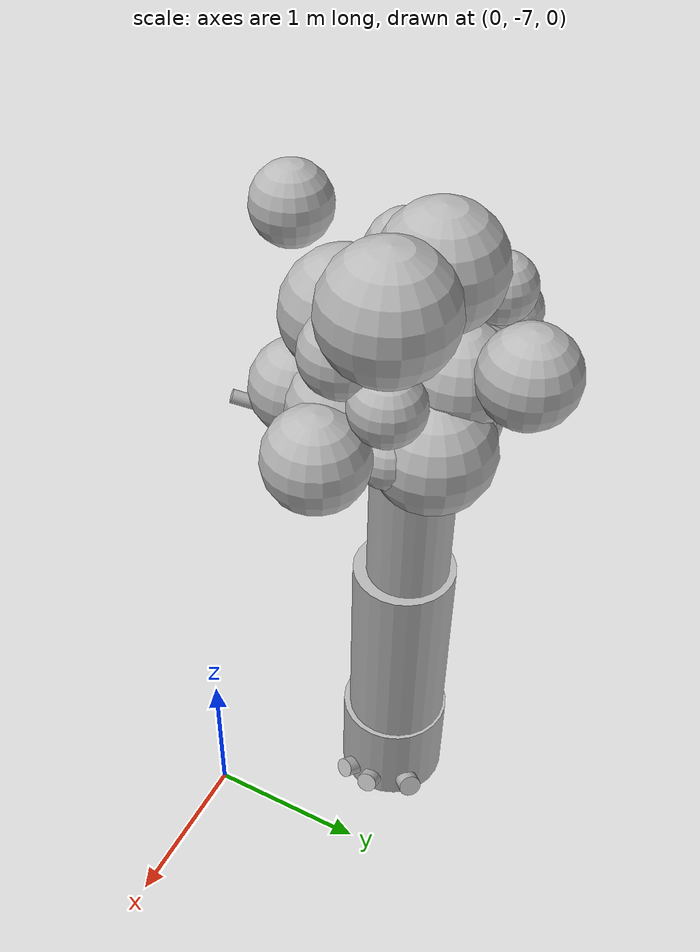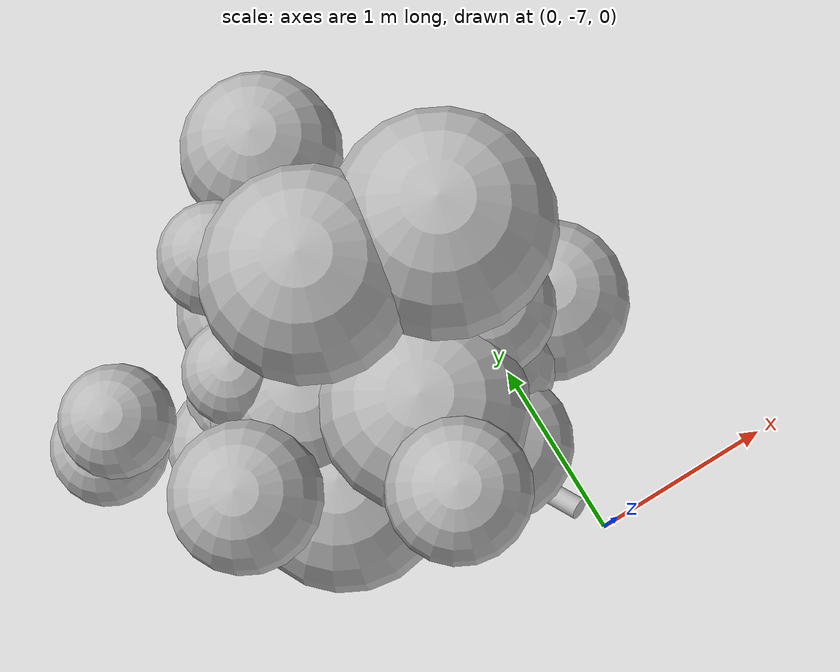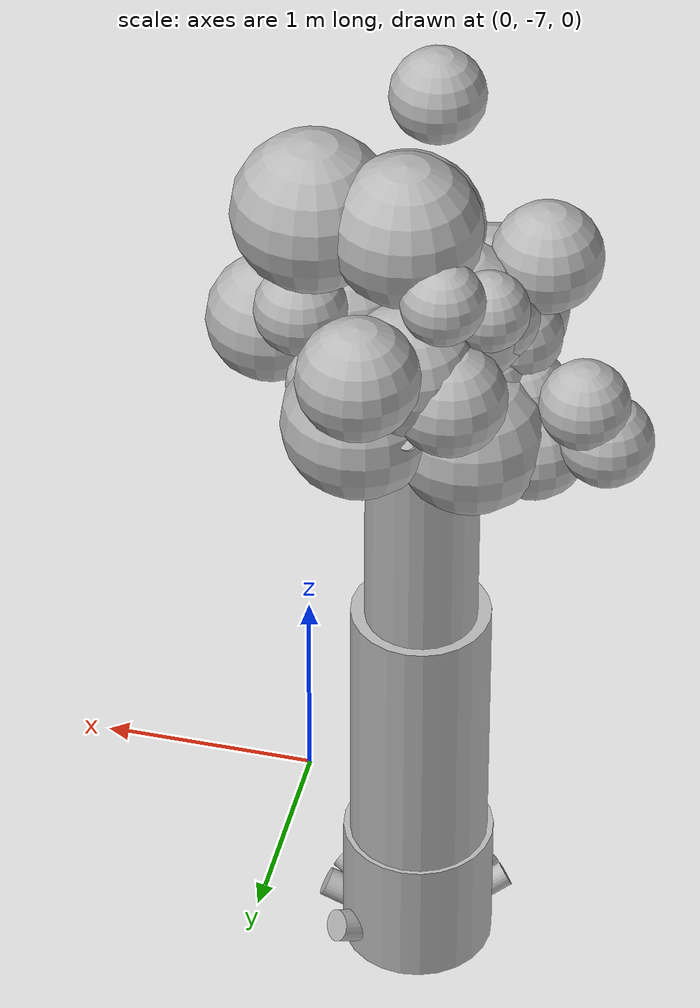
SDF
<sdf version="1.6">
 <world name="default">
  <model name="tree_12">
   <static>true</static>
   <pose>-0.7490 -6.0660 0 0 0 0</pose>
   <link name="trunk">
    <pose>0 0 1.5000 0 0 0</pose>
    <collision name="trunk_c">
     <geometry><cylinder><radius>0.3500</radius><length>3.0000</length></cylinder></geometry>
    </collision>
   </link>
   <link name="trunk_v0">
    <pose>-0.0004 0.0017 0.3100 0 0 0</pose>
    <visual name="trunk_v0_v">
     <geometry><cylinder><radius>0.3448</radius><length>0.6448</length></cylinder></geometry>
     <material>
      <script>
       <uri>model://bushfire/materials/scripts</uri>
       <uri>model://bushfire/materials/textures</uri>
       <name>Bushfire/CharBark</name>
      </script>
     </material>
    </visual>
   </link>
   <link name="trunk_v1">
    <pose>-0.0031 0.0120 1.2700 0 0 0</pose>
    <visual name="trunk_v1_v">
     <geometry><cylinder><radius>0.3150</radius><length>1.3520</length></cylinder></geometry>
     <material>
      <script>
       <uri>model://bushfire/materials/scripts</uri>
       <uri>model://bushfire/materials/textures</uri>
       <name>Bushfire/BarkSmooth</name>
      </script>
     </material>
    </visual>
   </link>
   <link name="trunk_v2">
    <pose>-0.0077 0.0302 2.4600 0 0 0</pose>
    <visual name="trunk_v2_v">
     <geometry><cylinder><radius>0.2520</radius><length>1.1232</length></cylinder></geometry>
     <material>
      <script>
       <uri>model://bushfire/materials/scripts</uri>
       <uri>model://bushfire/materials/textures</uri>
       <name>Bushfire/BarkSmooth</name>
      </script>
     </material>
    </visual>
   </link>
   <link name="root0">
    <pose>0.1748 0.1644 0.09 0 1.150 0.755</pose>
    <visual name="root0_v">
     <geometry><cylinder><radius>0.0740</radius><length>0.4200</length></cylinder></geometry>
     <material>
      <script>
       <uri>model://bushfire/materials/scripts</uri>
       <uri>model://bushfire/materials/textures</uri>
       <name>Bushfire/CharBark</name>
      </script>
     </material>
    </visual>
   </link>
   <link name="root1">
    <pose>-0.1397 -0.1952 0.09 0 1.150 4.091</pose>
    <visual name="root1_v">
     <geometry><cylinder><radius>0.0757</radius><length>0.4200</length></cylinder></geometry>
     <material>
      <script>
       <uri>model://bushfire/materials/scripts</uri>
       <uri>model://bushfire/materials/textures</uri>
       <name>Bushfire/CharBark</name>
      </script>
     </material>
    </visual>
   </link>
   <link name="root2">
    <pose>0.2203 -0.0951 0.09 0 1.150 5.876</pose>
    <visual name="root2_v">
     <geometry><cylinder><radius>0.0646</radius><length>0.4200</length></cylinder></geometry>
     <material>
      <script>
       <uri>model://bushfire/materials/scripts</uri>
       <uri>model://bushfire/materials/textures</uri>
       <name>Bushfire/CharBark</name>
      </script>
     </material>
    </visual>
   </link>
   <link name="root3">
    <pose>0.2398 0.0107 0.09 0 1.150 0.044</pose>
    <visual name="root3_v">
     <geometry><cylinder><radius>0.0673</radius><length>0.4200</length></cylinder></geometry>
     <material>
      <script>
       <uri>model://bushfire/materials/scripts</uri>
       <uri>model://bushfire/materials/textures</uri>
       <name>Bushfire/CharBark</name>
      </script>
     </material>
    </visual>
   </link>
   <link name="root4">
    <pose>-0.2041 -0.1262 0.09 0 1.150 3.696</pose>
    <visual name="root4_v">
     <geometry><cylinder><radius>0.0587</radius><length>0.4200</length></cylinder></geometry>
     <material>
      <script>
       <uri>model://bushfire/materials/scripts</uri>
       <uri>model://bushfire/materials/textures</uri>
       <name>Bushfire/CharBark</name>
      </script>
     </material>
    </visual>
   </link>
   <link name="branch0">
    <pose>0.2636 -0.0064 3.0713 0 0.8558 -0.0242</pose>
    <visual name="branch0_v">
     <geometry><cylinder><radius>0.0337</radius><length>0.6985</length></cylinder></geometry>
     <material>
      <script>
       <uri>model://bushfire/materials/scripts</uri>
       <uri>model://bushfire/materials/textures</uri>
       <name>Bushfire/BarkSmooth</name>
      </script>
     </material>
    </visual>
   </link>
   <link name="branch1">
    <pose>-0.0123 0.2164 3.0348 0 0.7707 1.6277</pose>
    <visual name="branch1_v">
     <geometry><cylinder><radius>0.0425</radius><length>0.6221</length></cylinder></geometry>
     <material>
      <script>
       <uri>model://bushfire/materials/scripts</uri>
       <uri>model://bushfire/materials/textures</uri>
       <name>Bushfire/BarkSmooth</name>
      </script>
     </material>
    </visual>
   </link>
   <link name="branch2">
    <pose>-0.2556 0.0350 2.8483 0 0.9260 3.0056</pose>
    <visual name="branch2_v">
     <geometry><cylinder><radius>0.0481</radius><length>0.6455</length></cylinder></geometry>
     <material>
      <script>
       <uri>model://bushfire/materials/scripts</uri>
       <uri>model://bushfire/materials/textures</uri>
       <name>Bushfire/BarkSmooth</name>
      </script>
     </material>
    </visual>
   </link>
   <link name="branch3">
    <pose>-0.1807 -0.1343 2.9584 0 0.9261 3.7809</pose>
    <visual name="branch3_v">
     <geometry><cylinder><radius>0.0417</radius><length>0.5634</length></cylinder></geometry>
     <material>
      <script>
       <uri>model://bushfire/materials/scripts</uri>
       <uri>model://bushfire/materials/textures</uri>
       <name>Bushfire/BarkSmooth</name>
      </script>
     </material>
    </visual>
   </link>
   <link name="branch4">
    <pose>0.1922 -0.1651 3.0190 0 0.6403 5.5736</pose>
    <visual name="branch4_v">
     <geometry><cylinder><radius>0.0481</radius><length>0.8483</length></cylinder></geometry>
     <material>
      <script>
       <uri>model://bushfire/materials/scripts</uri>
       <uri>model://bushfire/materials/textures</uri>
       <name>Bushfire/BarkSmooth</name>
      </script>
     </material>
    </visual>
   </link>
   <link name="spar">
    <pose>0.1913 -0.3739 3.0500 0 1.2208 5.1854</pose>
    <visual name="spar_v">
     <geometry><cylinder><radius>0.0380</radius><length>1.1500</length></cylinder></geometry>
     <material>
      <script>
       <uri>model://bushfire/materials/scripts</uri>
       <uri>model://bushfire/materials/textures</uri>
       <name>Bushfire/CharBark</name>
      </script>
     </material>
    </visual>
   </link>
   <link name="foliage0">
    <pose>0.7221 -0.1867 3.3139 0 0 0</pose>
    <visual name="foliage0_v">
     <geometry><sphere><radius>0.2858</radius></sphere></geometry>
     <material>
      <script>
       <uri>model://bushfire/materials/scripts</uri>
       <uri>model://bushfire/materials/textures</uri>
       <name>Bushfire/Foliage2</name>
      </script>
     </material>
    </visual>
   </link>
   <link name="foliage1">
    <pose>0.2264 0.2302 3.1576 0 0 0</pose>
    <visual name="foliage1_v">
     <geometry><sphere><radius>0.3434</radius></sphere></geometry>
     <material>
      <script>
       <uri>model://bushfire/materials/scripts</uri>
       <uri>model://bushfire/materials/textures</uri>
       <name>Bushfire/Foliage0</name>
      </script>
     </material>
    </visual>
   </link>
   <link name="foliage2">
    <pose>-0.4881 0.0032 2.9804 0 0 0</pose>
    <visual name="foliage2_v">
     <geometry><sphere><radius>0.2408</radius></sphere></geometry>
     <material>
      <script>
       <uri>model://bushfire/materials/scripts</uri>
       <uri>model://bushfire/materials/textures</uri>
       <name>Bushfire/Foliage2</name>
      </script>
     </material>
    </visual>
   </link>
   <link name="foliage3">
    <pose>-0.3974 -0.1038 3.1463 0 0 0</pose>
    <visual name="foliage3_v">
     <geometry><sphere><radius>0.2276</radius></sphere></geometry>
     <material>
      <script>
       <uri>model://bushfire/materials/scripts</uri>
       <uri>model://bushfire/materials/textures</uri>
       <name>Bushfire/Foliage2</name>
      </script>
     </material>
    </visual>
   </link>
   <link name="foliage4">
    <pose>0.0990 -0.6569 4.2660 0 0 0</pose>
    <visual name="foliage4_v">
     <geometry><sphere><radius>0.2131</radius></sphere></geometry>
     <material>
      <script>
       <uri>model://bushfire/materials/scripts</uri>
       <uri>model://bushfire/materials/textures</uri>
       <name>Bushfire/Foliage0</name>
      </script>
     </material>
    </visual>
   </link>
   <link name="foliage5">
    <pose>0.1508 -0.3400 3.7831 0 0 0</pose>
    <visual name="foliage5_v">
     <geometry><sphere><radius>0.3373</radius></sphere></geometry>
     <material>
      <script>
       <uri>model://bushfire/materials/scripts</uri>
       <uri>model://bushfire/materials/textures</uri>
       <name>Bushfire/Foliage1</name>
      </script>
     </material>
    </visual>
   </link>
   <link name="foliage6">
    <pose>-0.1598 0.3630 3.9660 0 0 0</pose>
    <visual name="foliage6_v">
     <geometry><sphere><radius>0.1816</radius></sphere></geometry>
     <material>
      <script>
       <uri>model://bushfire/materials/scripts</uri>
       <uri>model://bushfire/materials/textures</uri>
       <name>Bushfire/Foliage1</name>
      </script>
     </material>
    </visual>
   </link>
   <link name="foliage7">
    <pose>-0.8408 0.1826 3.2171 0 0 0</pose>
    <visual name="foliage7_v">
     <geometry><sphere><radius>0.2037</radius></sphere></geometry>
     <material>
      <script>
       <uri>model://bushfire/materials/scripts</uri>
       <uri>model://bushfire/materials/textures</uri>
       <name>Bushfire/Foliage0</name>
      </script>
     </material>
    </visual>
   </link>
   <link name="foliage8">
    <pose>-0.1586 -0.1260 3.1846 0 0 0</pose>
    <visual name="foliage8_v">
     <geometry><sphere><radius>0.3453</radius></sphere></geometry>
     <material>
      <script>
       <uri>model://bushfire/materials/scripts</uri>
       <uri>model://bushfire/materials/textures</uri>
       <name>Bushfire/Foliage1</name>
      </script>
     </material>
    </visual>
   </link>
   <link name="foliage9">
    <pose>0.3047 -0.5229 3.3471 0 0 0</pose>
    <visual name="foliage9_v">
     <geometry><sphere><radius>0.2666</radius></sphere></geometry>
     <material>
      <script>
       <uri>model://bushfire/materials/scripts</uri>
       <uri>model://bushfire/materials/textures</uri>
       <name>Bushfire/Foliage1</name>
      </script>
     </material>
    </visual>
   </link>
   <link name="foliage10">
    <pose>0.4719 0.0580 4.1121 0 0 0</pose>
    <visual name="foliage10_v">
     <geometry><sphere><radius>0.3525</radius></sphere></geometry>
     <material>
      <script>
       <uri>model://bushfire/materials/scripts</uri>
       <uri>model://bushfire/materials/textures</uri>
       <name>Bushfire/Foliage2</name>
      </script>
     </material>
    </visual>
   </link>
   <link name="foliage11">
    <pose>-0.1783 0.2921 3.4037 0 0 0</pose>
    <visual name="foliage11_v">
     <geometry><sphere><radius>0.2507</radius></sphere></geometry>
     <material>
      <script>
       <uri>model://bushfire/materials/scripts</uri>
       <uri>model://bushfire/materials/textures</uri>
       <name>Bushfire/Foliage2</name>
      </script>
     </material>
    </visual>
   </link>
   <link name="foliage12">
    <pose>-0.2983 0.0754 3.7299 0 0 0</pose>
    <visual name="foliage12_v">
     <geometry><sphere><radius>0.1754</radius></sphere></geometry>
     <material>
      <script>
       <uri>model://bushfire/materials/scripts</uri>
       <uri>model://bushfire/materials/textures</uri>
       <name>Bushfire/Foliage0</name>
      </script>
     </material>
    </visual>
   </link>
   <link name="foliage13">
    <pose>-0.2008 -0.3873 3.4004 0 0 0</pose>
    <visual name="foliage13_v">
     <geometry><sphere><radius>0.3518</radius></sphere></geometry>
     <material>
      <script>
       <uri>model://bushfire/materials/scripts</uri>
       <uri>model://bushfire/materials/textures</uri>
       <name>Bushfire/Foliage1</name>
      </script>
     </material>
    </visual>
   </link>
   <link name="foliage14">
    <pose>0.5179 0.0949 3.6067 0 0 0</pose>
    <visual name="foliage14_v">
     <geometry><sphere><radius>0.2034</radius></sphere></geometry>
     <material>
      <script>
       <uri>model://bushfire/materials/scripts</uri>
       <uri>model://bushfire/materials/textures</uri>
       <name>Bushfire/Foliage2</name>
      </script>
     </material>
    </visual>
   </link>
   <link name="foliage15">
    <pose>0.4771 -0.1721 3.8044 0 0 0</pose>
    <visual name="foliage15_v">
     <geometry><sphere><radius>0.2287</radius></sphere></geometry>
     <material>
      <script>
       <uri>model://bushfire/materials/scripts</uri>
       <uri>model://bushfire/materials/textures</uri>
       <name>Bushfire/Foliage2</name>
      </script>
     </material>
    </visual>
   </link>
   <link name="foliage16">
    <pose>-0.3475 -0.1944 3.4097 0 0 0</pose>
    <visual name="foliage16_v">
     <geometry><sphere><radius>0.2175</radius></sphere></geometry>
     <material>
      <script>
       <uri>model://bushfire/materials/scripts</uri>
       <uri>model://bushfire/materials/textures</uri>
       <name>Bushfire/Foliage2</name>
      </script>
     </material>
    </visual>
   </link>
   <link name="foliage17">
    <pose>-0.7443 0.2083 3.4127 0 0 0</pose>
    <visual name="foliage17_v">
     <geometry><sphere><radius>0.1970</radius></sphere></geometry>
     <material>
      <script>
       <uri>model://bushfire/materials/scripts</uri>
       <uri>model://bushfire/materials/textures</uri>
       <name>Bushfire/Foliage2</name>
      </script>
     </material>
    </visual>
   </link>
   <link name="foliage18">
    <pose>-0.2807 -0.0785 3.5833 0 0 0</pose>
    <visual name="foliage18_v">
     <geometry><sphere><radius>0.2047</radius></sphere></geometry>
     <material>
      <script>
       <uri>model://bushfire/materials/scripts</uri>
       <uri>model://bushfire/materials/textures</uri>
       <name>Bushfire/Foliage0</name>
      </script>
     </material>
    </visual>
   </link>
   <link name="foliage19">
    <pose>0.3950 -0.2232 3.3802 0 0 0</pose>
    <visual name="foliage19_v">
     <geometry><sphere><radius>0.2940</radius></sphere></geometry>
     <material>
      <script>
       <uri>model://bushfire/materials/scripts</uri>
       <uri>model://bushfire/materials/textures</uri>
       <name>Bushfire/Foliage2</name>
      </script>
     </material>
    </visual>
   </link>
   <link name="foliage20">
    <pose>0.4092 0.0645 3.1977 0 0 0</pose>
    <visual name="foliage20_v">
     <geometry><sphere><radius>0.1819</radius></sphere></geometry>
     <material>
      <script>
       <uri>model://bushfire/materials/scripts</uri>
       <uri>model://bushfire/materials/textures</uri>
       <name>Bushfire/Foliage1</name>
      </script>
     </material>
    </visual>
   </link>
   <link name="foliage21">
    <pose>0.0049 0.2488 3.4982 0 0 0</pose>
    <visual name="foliage21_v">
     <geometry><sphere><radius>0.2914</radius></sphere></geometry>
     <material>
      <script>
       <uri>model://bushfire/materials/scripts</uri>
       <uri>model://bushfire/materials/textures</uri>
       <name>Bushfire/Foliage2</name>
      </script>
     </material>
    </visual>
   </link>
   <link name="foliage22">
    <pose>-0.4685 -0.2890 3.7762 0 0 0</pose>
    <visual name="foliage22_v">
     <geometry><sphere><radius>0.2456</radius></sphere></geometry>
     <material>
      <script>
       <uri>model://bushfire/materials/scripts</uri>
       <uri>model://bushfire/materials/textures</uri>
       <name>Bushfire/Foliage2</name>
      </script>
     </material>
    </visual>
   </link>
   <link name="foliage23">
    <pose>-0.2293 0.0808 3.0485 0 0 0</pose>
    <visual name="foliage23_v">
     <geometry><sphere><radius>0.3487</radius></sphere></geometry>
     <material>
      <script>
       <uri>model://bushfire/materials/scripts</uri>
       <uri>model://bushfire/materials/textures</uri>
       <name>Bushfire/Foliage2</name>
      </script>
     </material>
    </visual>
   </link>
   <link name="foliage24">
    <pose>-0.0478 -0.4368 3.2868 0 0 0</pose>
    <visual name="foliage24_v">
     <geometry><sphere><radius>0.1818</radius></sphere></geometry>
     <material>
      <script>
       <uri>model://bushfire/materials/scripts</uri>
       <uri>model://bushfire/materials/textures</uri>
       <name>Bushfire/Foliage2</name>
      </script>
     </material>
    </visual>
   </link>
   <link name="foliage25">
    <pose>0.0557 0.1284 4.1339 0 0 0</pose>
    <visual name="foliage25_v">
     <geometry><sphere><radius>0.3314</radius></sphere></geometry>
     <material>
      <script>
       <uri>model://bushfire/materials/scripts</uri>
       <uri>model://bushfire/materials/textures</uri>
       <name>Bushfire/Foliage1</name>
      </script>
     </material>
    </visual>
   </link>
   <link name="foliage26">
    <pose>0.1331 0.6533 3.7350 0 0 0</pose>
    <visual name="foliage26_v">
     <geometry><sphere><radius>0.2659</radius></sphere></geometry>
     <material>
      <script>
       <uri>model://bushfire/materials/scripts</uri>
       <uri>model://bushfire/materials/textures</uri>
       <name>Bushfire/Foliage0</name>
      </script>
     </material>
    </visual>
   </link>
   <link name="foliage27">
    <pose>-0.1430 -0.0811 3.5731 0 0 0</pose>
    <visual name="foliage27_v">
     <geometry><sphere><radius>0.3130</radius></sphere></geometry>
     <material>
      <script>
       <uri>model://bushfire/materials/scripts</uri>
       <uri>model://bushfire/materials/textures</uri>
       <name>Bushfire/Foliage1</name>
      </script>
     </material>
    </visual>
   </link>
  </model>
 </world>
</sdf>
